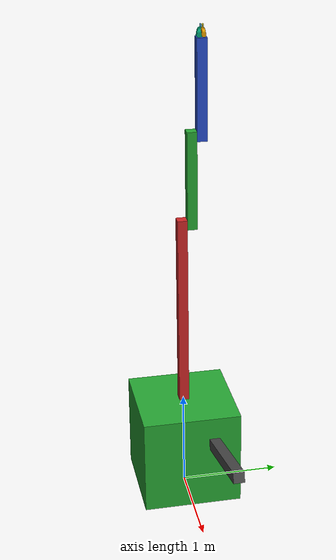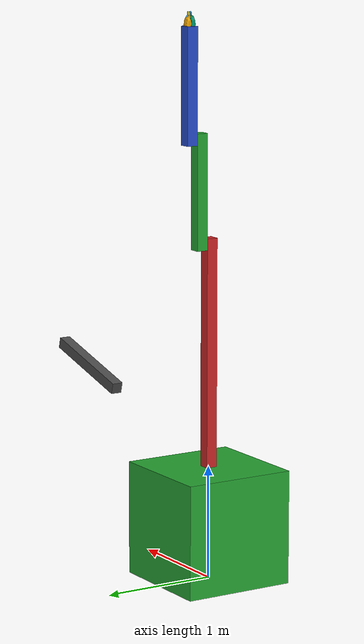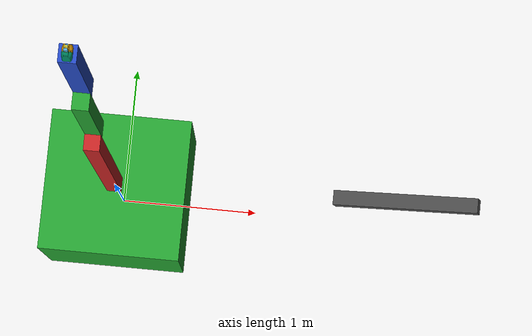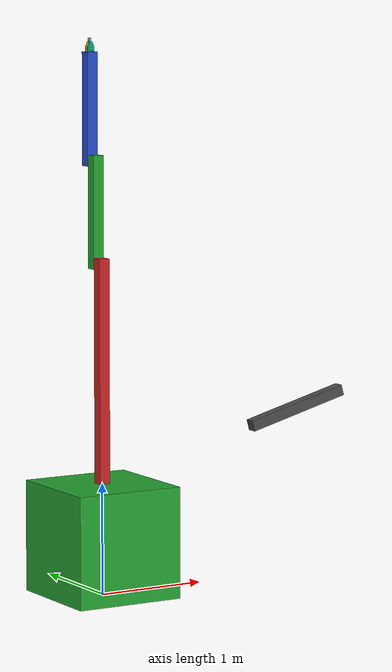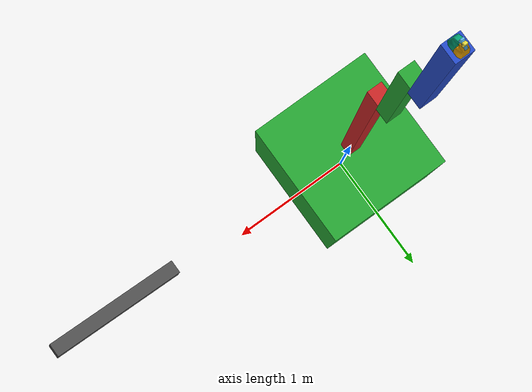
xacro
<?xml version="1.0"?>
<!-- Revolute-Revolute Manipulator -->
<robot name="rrbot" xmlns:xacro="http://www.ros.org/wiki/xacro">

  <!-- Constants for robot dimensions -->
  <xacro:property name="PI" value="3.14"/>
  <xacro:property name="width" value="0.1" />   <!-- Beams are square in length and width -->
  <xacro:property name="height1" value="2" />   <!-- Link 1 -->
  <xacro:property name="height2" value="1" />   <!-- Link 2 -->
  <xacro:property name="height3" value="1" />   <!-- Link 3 -->
  <xacro:property name="axle_offset" value="0.05" /> <!-- Space between joint and end of beam -->
  <xacro:property name="damp" value="0.7" />    <!-- damping coefficient -->

  <!-- Import Rviz colors -->
  <xacro:include filename="$(find ros_robotics)/urdf/materials.xacro" />

  <!-- Import gripper URDF -->
  <xacro:include filename="$(find ros_robotics)/urdf/gripper.xacro" />

  <!-- Import Gazebo elements, including Gazebo colors -->
  <xacro:include filename="$(find ros_robotics)/urdf/rrbot.gazebo" />

 <xacro:include filename="$(find ros_robotics)/urdf/macro.xacro" />

  <!-- Used for fixing rrbot frame to Gazebo world frame -->
  <link name="world"/>

  <joint name="fixed" type="fixed">
    <parent link="world"/>
    <child link="caja"/>
  </joint>

  <link name="caja">
    <visual>
      <origin xyz="0 0 0.5" rpy="0 0 0"/>
      <geometry>
  <box size="1 1 1"/>
      </geometry>
      <material name="green"/>
    </visual>
   <default_inert z_value="0" i_value="1.0" mass="2"/>
  </link>

  <joint name="joint_world" type="revolute">
    <parent link="caja"/>
    <child link="base_link"/>
    <origin xyz="0 0 1" rpy="0 0 0"/>
    <axis xyz="0 1 0"/>
    <dynamics damping="${damp}"/>
    <limit effort="500.0" velocity="0.3" lower="-3.14" upper="3.14" />
  </joint>

  <!-- Base Link -->
  <link name="base_link">
    <visual>
      <origin xyz="0 0 ${height1/2}" rpy="0 0 0"/>
      <geometry>
	<box size="${width} ${width} ${height1}"/>
      </geometry>
      <material name="red"/>
    </visual>

    <collision>
      <origin xyz="0 0 ${height1/2}" rpy="0 0 0"/>
      <geometry>
	<box size="${width} ${width} ${height1}"/>
      </geometry>
    </collision>

    <default_inert z_value="${height1/2}" i_value="1.0" mass="0.01"/>
  </link>

  <!-- Joint between Base Link and Middle Link -->
  <joint name="joint_base_mid" type="revolute">
    <parent link="base_link"/>
    <child link="mid_link"/>
    <origin xyz="0 ${width} ${height1 - axle_offset}" rpy="0 0 0"/>
    <axis xyz="0 1 0"/>
    <dynamics damping="${damp}"/>
    <limit effort="500.0" velocity="0.3" lower="-3.14" upper="3.14" />
  </joint>

  <!-- Middle Link -->
  <link name="mid_link">
    <visual>
      <origin xyz="0 0 ${height2/2 - axle_offset}" rpy="0 0 0"/>
      <geometry>
	<box size="${width} ${width} ${height2}"/>
      </geometry>
      <material name="green"/>
    </visual>

    <collision>
      <origin xyz="0 0 ${height2/2 - axle_offset}" rpy="0 0 0"/>
      <geometry>
	<box size="${width} ${width} ${height2}"/>
      </geometry>
    </collision>

    <default_inert z_value="${height2/2 - axle_offset}" i_value="1.0" mass="0.01"/>
  </link>

  <!-- Joint between Middle Link and Top Link -->
  <joint name="joint_mid_top" type="revolute">
    <parent link="mid_link"/>
    <child link="top_link"/>
    <origin xyz="0 ${width} ${height2 - axle_offset*2}" rpy="0 0 0"/>
    <axis xyz="0 1 0"/>
    <dynamics damping="0.1"/>
    <limit effort="500.0" velocity="0.8" lower="-3.14" upper="3.14" />
  </joint>

  <!-- Top Link -->
  <link name="top_link">
    <visual>
      <origin xyz="0 0 ${height3/2 - axle_offset}" rpy="0 0 0"/>
      <geometry>
	<box size="${width} ${width} ${height3}"/>
      </geometry>
      <material name="blue"/>
    </visual>

    <collision>
      <origin xyz="0 0 ${height3/2 - axle_offset}" rpy="0 0 0"/>
      <geometry>
	<box size="${width} ${width} ${height3}"/>
      </geometry>
    </collision>

    <default_inert z_value="${height3/2 - axle_offset}" i_value="1.0" mass="0.01"/>
  </link>

  <transmission name="transmission0">
    <type>transmission_interface/SimpleTransmission</type>
    <joint name="joint_world">
      <hardwareInterface>hardware_interface/PositionJointInterface</hardwareInterface>
    </joint>
    <actuator name="motor0">
      <hardwareInterface>hardware_interface/PositionJointInterface</hardwareInterface>
      <mechanicalReduction>1</mechanicalReduction>
    </actuator>
  </transmission>

  <transmission name="transmission1">
    <type>transmission_interface/SimpleTransmission</type>
    <joint name="joint_base_mid">
      <hardwareInterface>hardware_interface/PositionJointInterface</hardwareInterface>
    </joint>
    <actuator name="motor1">
      <hardwareInterface>hardware_interface/PositionJointInterface</hardwareInterface>
      <mechanicalReduction>1</mechanicalReduction>
    </actuator>
  </transmission>

 <transmission name="transmission2">
    <type>transmission_interface/SimpleTransmission</type>
    <joint name="joint_mid_top">
      <hardwareInterface>hardware_interface/PositionJointInterface</hardwareInterface>
    </joint>
    <actuator name="motor2">
      <hardwareInterface>hardware_interface/PositionJointInterface</hardwareInterface>
      <mechanicalReduction>1</mechanicalReduction>
    </actuator>
  </transmission>

<joint name="rgbd_camera_joint" type="fixed">
    <origin rpy="0 1.308996939 0" xyz="0.1 0 1"/>
    <parent link="world"/>
    <child link="rgbd_camera_link"/>
  </joint>
  <link name="rgbd_camera_link">
    <inertial>
      <origin rpy="0 0 0" xyz="-0.00936000000 -0.00003000000 2"/>
      <mass value="0.21970000000"/>
      <inertia ixx="0.00000429247" ixy="0.00000000000" ixz="0.00000002565" iyy="0.00000008027" iyz="0.00000000000" izz="0.00000427339"/>
    </inertial>
    <visual>
      <origin rpy="0 0 0" xyz="0 0 2"/>
      <geometry>
        <box size="${width} ${width} ${height2}"/>
      </geometry>
      <material name="DarkGrey"/>
    </visual>
  </link>
  <joint name="rgbd_camera_optical_joint" type="fixed">
    <origin rpy="-1.57079632679 0 -1.57079632679" xyz="0 0 0"/>
    <parent link="rgbd_camera_link"/>
    <child link="rgbd_camera_optical_frame"/>
  </joint>
  <link name="rgbd_camera_optical_frame">
    <inertial>
      <origin rpy="0 0 0" xyz="0 0 0"/>
      <mass value="0.001"/>
      <inertia ixx="0.00001" ixy="0" ixz="0" iyy="0.00001" iyz="0" izz="0.00001"/>
    </inertial>
  </link>
  <!-- Depth sensor frames -->
  <joint name="rgbd_camera_depth_joint" type="fixed">
    <origin rpy="0 0 0" xyz="0.0 0.049 0.0"/>
    <parent link="rgbd_camera_link"/>
    <child link="rgbd_camera_depth_frame"/>
  </joint>
  <link name="rgbd_camera_depth_frame">
    <inertial>
      <origin rpy="0 0 0" xyz="0 0 0"/>
      <mass value="0.001"/>
      <inertia ixx="0.00001" ixy="0" ixz="0" iyy="0.00001" iyz="0" izz="0.00001"/>
    </inertial>
  </link>
  <joint name="rgbd_camera_depth_optical_joint" type="fixed">
    <origin rpy="-1.57079632679 0.0 -1.57079632679" xyz="0 0 0"/>
    <parent link="rgbd_camera_depth_frame"/>
    <child link="rgbd_camera_depth_optical_frame"/>
  </joint>
  <link name="rgbd_camera_depth_optical_frame">
    <inertial>
      <origin rpy="0 0 0" xyz="0 0 0"/>
      <mass value="0.001"/>
      <inertia ixx="0.00001" ixy="0" ixz="0" iyy="0.00001" iyz="0" izz="0.00001"/>
    </inertial>
  </link>
  <!-- RGB sensor frames -->
  <joint name="rgbd_camera_rgb_joint" type="fixed">
    <origin rpy="0 0 0" xyz="0.0 0.022 0.0"/>
    <parent link="rgbd_camera_link"/>
    <child link="rgbd_camera_rgb_frame"/>
  </joint>
  <link name="rgbd_camera_rgb_frame">
    <inertial>
      <origin rpy="0 0 0" xyz="0 0 0"/>
      <mass value="0.001"/>
      <inertia ixx="0.00001" ixy="0" ixz="0" iyy="0.00001" iyz="0" izz="0.00001"/>
    </inertial>
  </link>
  <joint name="rgbd_camera_rgb_optical_joint" type="fixed">
    <origin rpy="-1.57079632679 0.0 -1.57079632679" xyz="0 0 0"/>
    <parent link="rgbd_camera_rgb_frame"/>
    <child link="rgbd_camera_rgb_optical_frame"/>
  </joint>
  <link name="rgbd_camera_rgb_optical_frame">
    <inertial>
      <origin rpy="0 0 0" xyz="0 0 0"/>
      <mass value="0.001"/>
      <inertia ixx="0.00001" ixy="0" ixz="0" iyy="0.00001" iyz="0" izz="0.00001"/>
    </inertial>
  </link>
  <gazebo reference="rgbd_camera_link">
    <!-- Depth (IR) -->
    <sensor name="rgbd_camera_frame_sensor" type="depth">
      <always_on>true</always_on>
      <update_rate>6.0</update_rate>
      <camera>
        <horizontal_fov>1.01229096616</horizontal_fov>
        <image>
          <format>R8G8B8</format>
          <width>320</width>
          <height>240</height>
        </image>
        <clip>
          <near>0.05</near>
          <far>4.0</far>
        </clip>
      </camera>
      <plugin filename="libgazebo_ros_openni_kinect.so" name="rgbd_camera_frame_controller">
        <alwaysOn>true</alwaysOn>
        <updateRate>6.0</updateRate>
        <cameraName>rgbd_camera</cameraName>
        <imageTopicName>ir/image_raw</imageTopicName>
        <cameraInfoTopicName>ir/camera_info</cameraInfoTopicName>
        <depthImageTopicName>depth/image_raw</depthImageTopicName>
        <depthImageCameraInfoTopicName>depth/camera_info</depthImageCameraInfoTopicName>
        <pointCloudTopicName>depth/points</pointCloudTopicName>
        <frameName>rgbd_camera_optical_frame</frameName>
        <pointCloudCutoff>0.05</pointCloudCutoff>
        <pointCloudCutoffMax>5</pointCloudCutoffMax>
        <rangeMax>4.0</rangeMax>
        <!-- Distortion parameters not supported in gazebo 1.9.* plugins -->
      </plugin>
    </sensor>
    <!-- RGB -->
    <sensor name="rgbd_camera_frame_sensor" type="depth">
      <always_on>true</always_on>
      <update_rate>6.0</update_rate>
      <camera>
        <horizontal_fov>1.01229096616</horizontal_fov>
        <image>
          <format>R8G8B8</format>
          <width>320</width>
          <height>240</height>
        </image>
        <clip>
          <near>0.05</near>
          <far>4.0</far>
        </clip>
      </camera>
      <plugin filename="libgazebo_ros_openni_kinect.so" name="rgbd_camera_frame_controller">
        <alwaysOn>true</alwaysOn>
        <updateRate>6.0</updateRate>
        <cameraName>rgbd_camera</cameraName>
        <imageTopicName>rgb/image_raw</imageTopicName>
        <cameraInfoTopicName>rgb/camera_info</cameraInfoTopicName>
        <pointCloudTopicName>rgb/points</pointCloudTopicName>
        <depthImageTopicName>depth/image_raw</depthImageTopicName>
        <depthImageCameraInfoTopicName>depth/camera_info</depthImageCameraInfoTopicName>
        <frameName>rgbd_camera_optical_frame</frameName>
        <pointCloudCutoff>0.05</pointCloudCutoff>
        <pointCloudCutoffMax>5</pointCloudCutoffMax>
        <rangeMax>4.0</rangeMax>
      </plugin>
    </sensor>
  </gazebo>

</robot>

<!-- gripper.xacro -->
<robot xmlns:xacro="http://www.ros.org/wiki/xacro">

 <xacro:include filename="$(find ros_robotics)/urdf/macro.xacro" />

  <!-- Gripper -->
  <joint name="left_gripper_joint" type="revolute">
    <parent link="top_link"/>
    <child link="left_gripper"/>
    <origin xyz="0 0 ${height2 - axle_offset}" rpy="0 -1.57 0"/>
    <axis xyz="0 0 -1"/>
    <limit effort="30.0" lower="-0.548" upper="0.0" velocity="0.1"/>
  </joint>

  <link name="left_gripper">
    <visual>
      <origin rpy="0 0 0" xyz="0 0 0"/>
      <geometry>
        <mesh filename="package://ros_robotics/meshes/l_finger.dae"/>
      </geometry>
    </visual>

    <collision>
      <geometry>
        <box size="0.1 0.1 0.1"/>
      </geometry>
    </collision>
    <default_inert z_value="0" i_value="0.000001" mass="1"/>
  </link>

  <joint name="left_tip_joint" type="fixed">
    <parent link="left_gripper"/>
    <child link="left_tip"/>
  </joint>

  <link name="left_tip">
    <visual>
      <origin rpy="0 0 0" xyz="0.09137 0.00495 0"/>
      <geometry>
        <mesh filename="package://ros_robotics/meshes/l_finger_tip.dae"/>
      </geometry>
    </visual>

    <collision>
      <geometry>
        <box size="0.1 0.1 0.1"/>
      </geometry>
    </collision>
    <default_inert z_value="0" i_value="1e-6" mass="1e-5"/>
  </link>

  <joint name="right_gripper_joint" type="revolute">
    <parent link="top_link"/>
    <child link="right_gripper"/>
    <origin xyz="0 0 ${height2 - axle_offset}" rpy="0 -1.57 0"/>
    <axis xyz="0 0 1"/>
    <limit effort="30.0" lower="-0.548" upper="0.0" velocity="0.1"/>
  </joint>

  <link name="right_gripper">
    <visual>
      <origin rpy="3.1415 0 0" xyz="0 0 0"/>
      <geometry>
        <mesh filename="package://ros_robotics/meshes/l_finger.dae"/>
      </geometry>
    </visual>

    <collision>
      <geometry>
        <box size="0.1 0.1 0.1"/>
      </geometry>
    </collision>
    <default_inert z_value="0" i_value="1e-6" mass="1"/>
  </link>

  <joint name="right_tip_joint" type="fixed">
    <parent link="right_gripper"/>
    <child link="right_tip"/>
  </joint>

  <link name="right_tip">
    <visual>
      <origin rpy="-3.1415 0 0" xyz="0.09137 0.00495 0"/>
      <geometry>
        <mesh filename="package://ros_robotics/meshes/l_finger_tip.dae"/>
      </geometry>
    </visual>

    <collision>
      <geometry>
        <box size="0.1 0.1 0.1"/>
      </geometry>
    </collision>
    <default_inert z_value="0" i_value="1e-6" mass="1e-5"/>
  </link>

  <transmission name="gripper_transmission1">
    <type>transmission_interface/SimpleTransmission</type>
    <joint name="left_gripper_joint">
      <hardwareInterface>EffortJointInterface</hardwareInterface>
    </joint>
    <actuator name="gripper_motor1">
      <hardwareInterface>EffortJointInterface</hardwareInterface>
      <mechanicalReduction>1</mechanicalReduction>
    </actuator>
  </transmission>

  <transmission name="gripper_transmission2">
    <type>transmission_interface/SimpleTransmission</type>
    <joint name="right_gripper_joint">
      <hardwareInterface>EffortJointInterface</hardwareInterface>
    </joint>
    <actuator name="gripper_motor2">
      <hardwareInterface>EffortJointInterface</hardwareInterface>
      <mechanicalReduction>1</mechanicalReduction>
    </actuator>
  </transmission>

</robot>

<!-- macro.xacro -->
<robot name="rrbot" xmlns:xacro="http://www.ros.org/wiki/xacro">

  <macro name="default_inert" params="z_value i_value mass">
    <inertial>
      <origin xyz="0 0 ${z_value}" rpy="0 0 0"/>
      <mass value="${mass}" />
      <inertia ixx="${i_value}" ixy="0.0" ixz="0.0"
               iyy="${i_value}" iyz="0.0"
               izz="${i_value}" />
      </inertial>
  </macro>

</robot>
